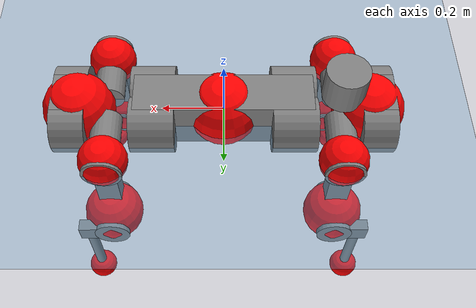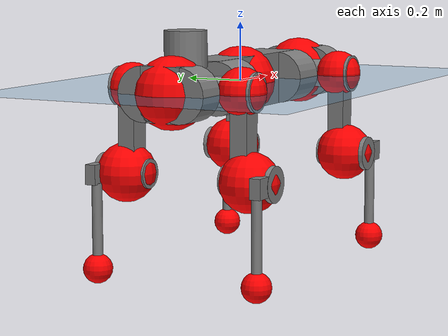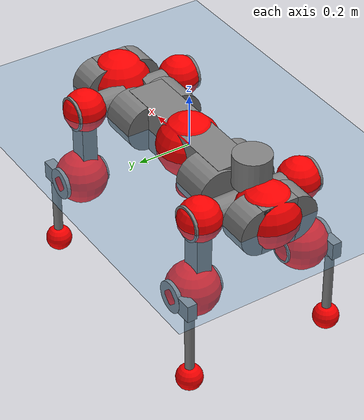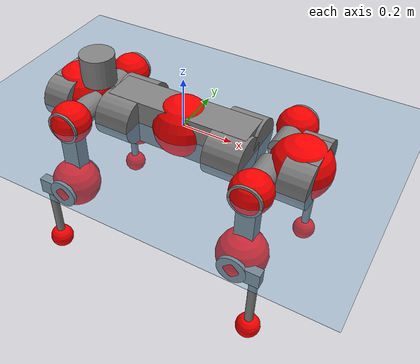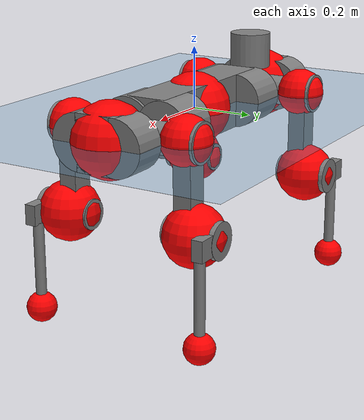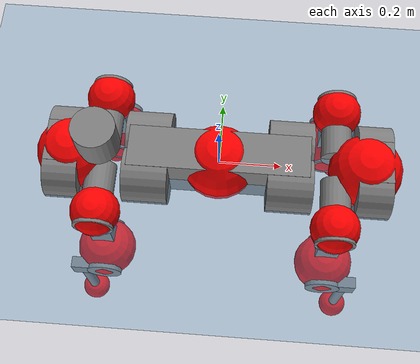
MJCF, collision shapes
<mujoco model="anymal_c">
  <compiler angle="radian" assetdir="assets" balanceinertia="true" inertiafromgeom="false"/>

  <option timestep="0.005" density="1.2" viscosity="2e-05"/>

  <size nkey="1"/>

  <visual>
    <quality shadowsize="8192"/>
    <map shadowclip="0.5"/>
  </visual>

  <default>
    <default class="/">
      <material specular="0" shininess="0.25"/>
      <geom contype="0" conaffinity="0" group="1" solref="-1000 -80"/>
      <site size="0.01 0.005 0.005" group="5"/>
      <general forcelimited="true" forcerange="-80 80" biastype="affine" gainprm="80" biasprm="0 -80 -2"/>
      <default class="anymal_c">
        <joint armature="0.01" damping="0.01" frictionloss="0.1"/>
        <default class="visual">
          <geom type="mesh" group="2"/>
          <default class="visual_zflip"/>
        </default>
        <default class="collision">
          <geom type="cylinder" group="3"/>
          <default class="foot">
            <geom size="0.03 0 0" type="sphere" condim="6" priority="1" friction="0.8 0.02 0.01" solimp="0.015 1 0.03"/>
          </default>
        </default>
      </default>
      <default class="reward_collision_sphere">
        <geom group="5" rgba="1 0 0 1"/>
      </default>
    </default>
  </default>

  <asset>
    <texture type="skybox" colorspace="auto" name="//unnamed_texture_0" builtin="gradient" rgb1="0.95 0.95 0.95" rgb2="0.95 0.95 0.95" width="100" height="600"/>
    <texture type="2d" colorspace="auto" name="texplane" builtin="checker" rgb1="0.345 0.575 0.748" rgb2="0.345 0.575 0.748" markrgb="1 1 1" width="512" height="512"/>
    <texture type="2d" colorspace="linear" name="base" file="base.png"/>
    <texture type="2d" colorspace="linear" name="top_shell" file="top_shell.png"/>
    <texture type="2d" colorspace="linear" name="bottom_shell" file="bottom_shell.png"/>
    <texture type="2d" colorspace="linear" name="remote" file="remote.png"/>
    <texture type="2d" colorspace="linear" name="hatch" file="hatch.png"/>
    <texture type="2d" colorspace="linear" name="handle" file="handle.png"/>
    <texture type="2d" colorspace="linear" name="face" file="face.png"/>
    <texture type="2d" colorspace="linear" name="battery" file="battery.png"/>
    <texture type="2d" colorspace="linear" name="lidar_cage" file="lidar_cage.png"/>
    <texture type="2d" colorspace="linear" name="depth_camera" file="depth_camera.png"/>
    <texture type="2d" colorspace="linear" name="wide_angle_camera" file="wide_angle_camera.png"/>
    <texture type="2d" colorspace="linear" name="lidar" file="lidar.png"/>
    <texture type="2d" colorspace="linear" name="drive" file="drive.png"/>
    <texture type="2d" colorspace="linear" name="hip_l" file="hip_l.png"/>
    <texture type="2d" colorspace="linear" name="shank_l" file="shank_l.png"/>
    <texture type="2d" colorspace="linear" name="foot" file="foot.png"/>
    <texture type="2d" colorspace="linear" name="thigh" file="thigh.png"/>
    <texture type="2d" colorspace="linear" name="shank_r" file="shank_r.png"/>
    <texture type="2d" colorspace="linear" name="hip_r" file="hip_r.png"/>
    <material name="MatPlane" class="/" texture="texplane" texuniform="true" texrepeat="2 2" specular="0.9" shininess="0.5"/>
    <material name="black_plastic" class="/" rgba="0.007 0.007 0.007 1"/>
    <material name="green" class="/" rgba="0.052 0.178 0.033 1"/>
    <material name="red" class="/" rgba="0.178 0.006 0.005 1"/>
    <material name="yellow" class="/" rgba="0.178 0.119 0.006 1"/>
    <material name="lwl" class="/" rgba="0.8 0.8 0.8 1"/>
    <material name="base" class="/" texture="base"/>
    <material name="top_shell" class="/" texture="top_shell"/>
    <material name="bottom_shell" class="/" texture="bottom_shell"/>
    <material name="hip_l" class="/" texture="hip_l"/>
    <material name="thigh" class="/" texture="thigh"/>
    <material name="shank_l" class="/" texture="shank_l"/>
    <material name="foot" class="/" texture="foot"/>
    <material name="hip_r" class="/" texture="hip_r"/>
    <material name="shank" class="/" texture="shank_r"/>
    <material name="hatch" class="/" texture="hatch"/>
    <material name="remote" class="/" texture="remote"/>
    <material name="handle" class="/" texture="handle"/>
    <material name="face" class="/" texture="face"/>
    <material name="depth_camera" class="/" texture="depth_camera"/>
    <material name="wide_angle_camera" class="/" texture="wide_angle_camera"/>
    <material name="battery" class="/" texture="battery"/>
    <material name="lidar_cage" class="/" texture="lidar_cage"/>
    <material name="lidar" class="/" texture="lidar"/>
    <material name="drive" class="/" texture="drive"/>
    <mesh name="base_0" class="/" file="base_0.obj"/>
    <mesh name="base_1" class="/" file="base_1.obj"/>
    <mesh name="base_2" class="/" file="base_2.obj"/>
    <mesh name="base_3" class="/" file="base_3.obj"/>
    <mesh name="base_4" class="/" file="base_4.obj"/>
    <mesh name="base_5" class="/" file="base_5.obj"/>
    <mesh name="top_shell" class="/" file="top_shell.obj"/>
    <mesh name="bottom_shell" class="/" file="bottom_shell.obj"/>
    <mesh name="remote" class="/" file="remote.obj"/>
    <mesh name="handle" class="/" file="handle.obj"/>
    <mesh name="face" class="/" file="face.obj"/>
    <mesh name="wide_angle_camera" class="/" file="wide_angle_camera.obj"/>
    <mesh name="depth_camera" class="/" file="depth_camera.obj"/>
    <mesh name="battery" class="/" file="battery.obj"/>
    <mesh name="lidar_cage" class="/" file="lidar_cage.obj"/>
    <mesh name="lidar" class="/" file="lidar.obj"/>
    <mesh name="drive" class="/" file="drive.obj"/>
    <mesh name="hip_l" class="/" file="hip_l.obj"/>
    <mesh name="thigh" class="/" file="thigh.obj"/>
    <mesh name="shank_l" class="/" file="shank_l.obj"/>
    <mesh name="foot" class="/" file="foot.obj"/>
    <mesh name="hip_r" class="/" file="hip_r.obj"/>
    <mesh name="hatch" class="/" file="hatch.obj"/>
    <mesh name="shank_r" class="/" file="shank_r.obj"/>
  </asset>

  <worldbody>
    <geom name="floor" class="/" size="100 100 0.125" type="plane" group="0" material="MatPlane"/>
    <light name="toplight_shadow" class="/" pos="0 0 5" dir="0.0990148 0.0990148 -0.990148" type="directional" ambient="0.04 0.04 0.04" diffuse="0.55 0.55 0.55" specular="0.12 0.12 0.12"/>
    <light name="toplight_fill" class="/" pos="0 0 5" dir="0.0990148 0.0990148 -0.990148" type="directional" castshadow="false" ambient="0.04 0.04 0.04" diffuse="0.3 0.3 0.3" specular="0.08 0.08 0.08"/>
    <body name="trunk" childclass="anymal_c" pos="0.000729882 0.000304797 0.000666907" quat="1 6.84145e-05 -3.95512e-05 -6.56127e-05">
      <inertial pos="0.00187839 -0.00039724 0.0485238" quat="0.501914 0.499761 0.499117 0.499203" mass="17.985" diaginertia="0.775745 0.402361 0.21052"/>
      <joint name="//unnamed_joint_0" type="free" armature="0" damping="0" frictionloss="0"/>
      <geom name="//unnamed_geom_1" class="visual" material="green" mesh="base_0"/>
      <geom name="//unnamed_geom_2" class="visual" material="yellow" mesh="base_1"/>
      <geom name="//unnamed_geom_3" class="visual" material="red" mesh="base_2"/>
      <geom name="//unnamed_geom_4" class="visual" material="black_plastic" mesh="base_3"/>
      <geom name="//unnamed_geom_5" class="visual" material="lwl" mesh="base_4"/>
      <geom name="//unnamed_geom_6" class="visual" material="base" mesh="base_5"/>
      <geom name="trunk_1" class="collision" size="0.284799 0.0687445 0.0883858" type="box"/>
      <geom name="trunk_2" class="collision" size="0.0883858 0.0711997" pos="0.225848 0.0640513 0" quat="0.707107 0 0.707107 0"/>
      <geom name="trunk_3" class="collision" size="0.0883858 0.0711997" pos="-0.225848 0.0640513 0" quat="0.707107 0 0.707107 0"/>
      <geom name="trunk_4" class="collision" size="0.0883858 0.0711997" pos="0.225848 -0.0640513 0" quat="0.707107 0 0.707107 0"/>
      <geom name="trunk_5" class="collision" size="0.0883858 0.0711997" pos="-0.225848 -0.0640513 0" quat="0.707107 0 0.707107 0"/>
      <geom name="//unnamed_geom_12" class="visual" material="top_shell" mesh="top_shell"/>
      <geom name="//unnamed_geom_13" class="visual" material="bottom_shell" mesh="bottom_shell"/>
      <geom name="//unnamed_geom_14" class="visual" material="remote" mesh="remote"/>
      <geom name="//unnamed_geom_15" class="visual" material="handle" mesh="handle"/>
      <geom name="//unnamed_geom_16" class="visual" pos="0.430409 0 0" quat="1 0 0 0" material="face" mesh="face"/>
      <geom name="trunk_6" class="collision" size="0.0540135 0.0687445 0.0883858" pos="0.487519 0 0" type="box"/>
      <geom name="//unnamed_geom_18" class="collision" size="0.0883858 0.0540135" pos="0.487519 0.0640513 0" quat="0.707107 0 0.707107 0"/>
      <geom name="//unnamed_geom_19" class="collision" size="0.0883858 0.0540135" pos="0.487519 -0.0640513 0" quat="0.707107 0 0.707107 0"/>
      <geom name="//unnamed_geom_20" class="visual" pos="0.479366 0 -0.0286431" quat="0.965926 0 0.258819 0" material="depth_camera" mesh="depth_camera"/>
      <geom name="//unnamed_geom_21" class="visual" pos="0.532689 0 0.0148621" material="wide_angle_camera" mesh="wide_angle_camera"/>
      <geom name="//unnamed_geom_22" class="visual_zflip" pos="-0.430409 0 0" quat="0 0 0 1" material="face" mesh="face"/>
      <geom name="trunk_7" class="collision" size="0.0540135 0.0687445 0.0883858" pos="-0.487519 0 0" quat="0 0 0 1" type="box"/>
      <geom name="//unnamed_geom_24" class="collision" size="0.0883858 0.0540135" pos="-0.487519 -0.0640513 0" quat="0 -0.707107 0 0.707107"/>
      <geom name="//unnamed_geom_25" class="collision" size="0.0883858 0.0540135" pos="-0.487519 0.0640513 0" quat="0 -0.707107 0 0.707107"/>
      <geom name="//unnamed_geom_26" class="visual" pos="-0.479366 0 -0.0286431" quat="0 -0.258819 0 0.965926" material="depth_camera" mesh="depth_camera"/>
      <geom name="//unnamed_geom_27" class="visual_zflip" pos="-0.532689 0 0.0148621" quat="0 0 0 1" material="wide_angle_camera" mesh="wide_angle_camera"/>
      <geom name="//unnamed_geom_28" class="visual" material="battery" mesh="battery"/>
      <geom name="//unnamed_geom_29" class="visual" pos="0 0.0683417 0.0291871" quat="0.683013 -0.183013 0.183013 0.683013" material="depth_camera" mesh="depth_camera"/>
      <geom name="//unnamed_geom_30" class="visual" pos="0 -0.0683417 0.0291871" quat="0.683013 0.183013 0.183013 -0.683013" material="depth_camera" mesh="depth_camera"/>
      <geom name="//unnamed_geom_31" class="visual" pos="-0.37797 0 0.0729704" quat="1 0 0 0" material="lidar_cage" mesh="lidar_cage"/>
      <geom name="trunk_8" class="collision" size="0.0687445 0.0589239" pos="-0.37797 0 0.132538"/>
      <geom name="//unnamed_geom_33" class="visual" pos="-0.37797 -4.84654e-05 0.141175" quat="0.707107 0 0 -0.707107" material="lidar" mesh="lidar"/>
      <geom name="//unnamed_geom_34" class="visual" pos="0.31141 0.0951896 -1.34164e-09" quat="0.258819 0.965926 0 0" material="drive" mesh="drive"/>
      <geom name="//unnamed_geom_35" class="visual" pos="0.31141 -0.0951896 1.34164e-09" quat="0.258819 -0.965926 0 0" material="drive" mesh="drive"/>
      <geom name="//unnamed_geom_36" class="visual" pos="-0.31141 0.0951896 1.34164e-09" quat="0 0 0.965926 -0.258819" material="drive" mesh="drive"/>
      <geom name="//unnamed_geom_37" class="visual" pos="-0.31141 -0.0951896 -1.34164e-09" quat="0 0 -0.965926 -0.258819" material="drive" mesh="drive"/>
      <geom name="//unnamed_geom_38" class="visual" pos="0.120452 0 0.072474" quat="1 0 0 0" material="hatch" mesh="hatch"/>
      <geom name="//unnamed_geom_39" class="reward_collision_sphere" size="0.117848"/>
      <geom name="//unnamed_geom_40" class="reward_collision_sphere" size="0.117848" pos="0.467271 0 0"/>
      <geom name="//unnamed_geom_41" class="reward_collision_sphere" size="0.117848" pos="-0.467271 0 0"/>
      <site name="imu" pos="0.259712 0.00343736 0.0461713" size="0.00982064"/>
      <camera name="track" pos="0 -1.83004 0" quat="0.707107 0.707107 0 0" mode="trackcom"/>
      <camera name="ego_camera" pos="0.467271 0 -0.0397118" quat="-0.5 -0.5 0.5 0.5"/>
      <body name="LF_HIP" pos="0.311763 0.0946573 0.000181669" quat="0.258889 0.965907 0.000215805 3.30161e-05">
        <inertial pos="0.059361 -0.0130011 -0.00831869" quat="-0.12869 0.709563 -0.135015 0.679507" mass="2.67184" diaginertia="0.00718151 0.00314257 0.00317389"/>
        <joint name="LF_HAA" pos="0 0 0" axis="0.999982 -0.00592943 -0.000881238" stiffness="4.34332e-06" range="-0.708081 0.488331" armature="0.00976564" damping="0.00636348" frictionloss="0.0982901"/>
        <geom name="//unnamed_geom_42" class="visual" pos="0 -7.89226e-05 1.2963e-05" quat="0.258819 -0.965926 0 0" material="hip_l" mesh="hip_l"/>
        <geom name="//unnamed_geom_43" class="visual" pos="0.062199 -0.0737707 -0.0431668" quat="0.183013 -0.683013 0.683013 0.183013" material="drive" mesh="drive"/>
        <geom name="//unnamed_geom_44" class="collision" size="0.0491032 0.0687445" pos="0.062199 -0.0109434 -0.00685524" quat="-0.353553 -0.612372 0.612372 -0.353553"/>
        <body name="LF_THIGH" pos="0.0616809 -0.0669097 -0.0429109" quat="0.182967 -0.683016 0.682991 0.183125">
          <inertial pos="0.0314444 0.000978616 -0.244015" quat="0.993176 -0.00521928 -0.0806369 0.0840952" mass="2.94496" diaginertia="0.0365027 0.0192703 0.00411596"/>
          <joint name="LF_HFE" pos="0 0 0" axis="1 -8.62112e-06 0.000815571" range="-3.15116 3.13721" armature="0.00989369" damping="0.0101175" frictionloss="0.0985463"/>
          <geom name="//unnamed_geom_45" class="visual" pos="0.00245441 3.86757e-06 0" quat="0.707107 0 0 -0.707107" material="thigh" mesh="thigh"/>
          <geom name="//unnamed_geom_46" class="collision" size="0.0638342 0.0392826" pos="0.0415352 0 0" quat="0.5 0.5 -0.5 -0.5"/>
          <geom name="//unnamed_geom_47" class="collision" size="0.0368274 0.0294619 0.138779" pos="0.0311514 0 -0.140296" quat="0.707107 0 0 -0.707107" type="box"/>
          <geom name="//unnamed_geom_48" class="visual" pos="0.10415 0 -0.282946" quat="1 0 0 0" material="drive" mesh="drive"/>
          <geom name="//unnamed_geom_49" class="collision" size="0.0491032 0.0687445" pos="0.0314629 0 -0.282946" quat="0.707107 0 0.707107 0"/>
          <geom name="//unnamed_geom_50" class="reward_collision_sphere" size="0.0785651" pos="0.0259595 0 0"/>
          <body name="LF_SHANK" pos="0.104235 -0.00043197 -0.283311" quat="1 -0.000171732 0.000367773 7.6737e-05">
            <inertial pos="0.00607223 -0.0559666 -0.0809519" quat="0.993083 -0.114523 -0.00152616 -0.0258463" mass="0.557783" diaginertia="0.0125367 0.00592369 0.00109378"/>
            <joint name="LF_KFE" pos="0 0 0" axis="0.999995 -0.00285527 0.00147496" range="-3.14299 3.13414" armature="0.00948136" damping="0.00878307" frictionloss="0.0942453"/>
            <geom name="//unnamed_geom_51" class="visual" pos="0.000800328 0.00426739 0" quat="0.707107 0 0 -0.707107" material="shank_l" mesh="shank_l"/>
            <geom name="LF_kfe_act" class="collision" size="0.0589239 0.0196413" pos="0.0207676 0 0" quat="0.5 0.5 -0.5 -0.5"/>
            <geom name="//unnamed_geom_53" class="collision" size="0.0564677 0.0331447 0.0186592" pos="0.0207676 -0.0526127 0" quat="0.5 0.5 -0.5 -0.5" type="box"/>
            <geom name="//unnamed_geom_54" class="visual" pos="0.0135507 -0.0791007 -0.335535" quat="0.382683 0 0 -0.92388" material="foot" mesh="foot"/>
            <geom name="LF_calf" class="collision" size="0.0171861 0.138719" pos="0.0135509 -0.0804759 -0.167767" quat="0.707107 0 0 -0.707107"/>
            <geom name="LF_foot" class="foot" size="0.0306146" pos="0.0135509 -0.0804759 -0.313197" quat="0.707107 0 0 -0.707107"/>
            <geom name="//unnamed_geom_57" class="reward_collision_sphere" size="0.0982064" pos="-0.051919 0 0"/>
            <geom name="//unnamed_geom_58" class="reward_collision_sphere" size="0.0491032" pos="0.0135509 -0.0804759 -0.313197"/>
            <site name="LF_foot" class="foot" pos="0.0135509 -0.0804759 -0.313197" quat="0.707107 0 0 -0.707107" size="0.00982064"/>
          </body>
        </body>
      </body>
      <body name="RF_HIP" pos="0.312228 -0.0957955 0.000165583" quat="0.258745 -0.965946 -8.5961e-05 -0.00025724">
        <inertial pos="0.0581454 0.014547 -0.0082583" quat="0.136263 0.679982 0.127701 0.709049" mass="2.64323" diaginertia="0.00720817 0.00319109 0.00324245"/>
        <joint name="RF_HAA" pos="0 0 0" axis="0.999985 -0.00547673 0.000397334" range="-0.492606 0.720764" armature="0.00993496" damping="0.00783938" frictionloss="0.0995747"/>
        <geom name="//unnamed_geom_59" class="visual" pos="0 7.89219e-05 1.29629e-05" quat="0.258819 0.965926 0 0" material="hip_r" mesh="hip_r"/>
        <geom name="//unnamed_geom_60" class="visual" pos="0.062199 0.0737707 -0.0431668" quat="0.183013 0.683013 0.683013 -0.183013" material="drive" mesh="drive"/>
        <geom name="//unnamed_geom_61" class="collision" size="0.0491032 0.0687445" pos="0.062199 0.0109434 -0.00685524" quat="-0.353553 0.612372 0.612372 0.353553"/>
        <body name="RF_THIGH" pos="0.0623856 0.0657785 -0.0420025" quat="0.182949 0.68292 0.683153 -0.182898">
          <inertial pos="0.0311929 0.000543741 -0.243469" quat="0.992834 -0.00531163 -0.083435 0.0853888" mass="2.90193" diaginertia="0.0369486 0.0193297 0.0040536"/>
          <joint name="RF_HFE" pos="0 0 0" axis="1 -0.000356903 0.000638769" stiffness="0.000270679" range="-3.14607 3.13012" armature="0.00985363" damping="0.00758992" frictionloss="0.0955101"/>
          <geom name="//unnamed_geom_62" class="visual" pos="0.00245441 3.86757e-06 0" quat="0.707107 0 0 -0.707107" material="thigh" mesh="thigh"/>
          <geom name="//unnamed_geom_63" class="collision" size="0.0638342 0.0392826" pos="0.0415352 0 0" quat="0.5 0.5 0.5 0.5"/>
          <geom name="//unnamed_geom_64" class="collision" size="0.0368274 0.0294619 0.138779" pos="0.0311514 0 -0.140296" quat="0.707107 0 0 0.707107" type="box"/>
          <geom name="//unnamed_geom_65" class="visual" pos="0.10415 0 -0.282946" quat="1 0 0 0" material="drive" mesh="drive"/>
          <geom name="//unnamed_geom_66" class="collision" size="0.0491032 0.0687445" pos="0.0314629 0 -0.282946" quat="0.707107 0 0.707107 0"/>
          <geom name="//unnamed_geom_67" class="reward_collision_sphere" size="0.0785651" pos="0.0259595 0 0"/>
          <body name="RF_SHANK" pos="0.104046 0.000637425 -0.282491" quat="1 -4.52426e-05 1.33613e-05 1.93869e-05">
            <inertial pos="0.00596998 0.0557819 -0.0796929" quat="0.992933 0.115926 -0.00114545 0.0253881" mass="0.558385" diaginertia="0.0122649 0.00592713 0.00108916"/>
            <joint name="RF_KFE" pos="0 0 0" axis="1 -0.000299702 -0.000130602" range="-3.13842 3.12111" armature="0.00985388" damping="0.0050424" frictionloss="0.0999843"/>
            <geom name="//unnamed_geom_68" class="visual" pos="0.000800324 -0.00426738 0" quat="0.707107 0 0 0.707107" material="shank" mesh="shank_r"/>
            <geom name="RF_kfe_act" class="collision" size="0.0589239 0.0196413" pos="0.0207676 0 0" quat="0.5 0.5 0.5 0.5"/>
            <geom name="//unnamed_geom_70" class="collision" size="0.0564677 0.0331447 0.0186592" pos="0.0207676 0.0526127 0" quat="0.5 0.5 0.5 0.5" type="box"/>
            <geom name="//unnamed_geom_71" class="visual" pos="0.0135511 0.0791007 -0.335535" quat="0.382683 0 0 0.92388" material="foot" mesh="foot"/>
            <geom name="RF_calf" class="collision" size="0.0171861 0.138719" pos="0.0135509 0.0804759 -0.167767" quat="0.707107 0 0 0.707107"/>
            <geom name="RF_foot" class="foot" size="0.0297206" pos="0.0135509 0.0804759 -0.313197" quat="0.707107 0 0 0.707107"/>
            <geom name="//unnamed_geom_74" class="reward_collision_sphere" size="0.0982064" pos="-0.051919 0 0"/>
            <geom name="//unnamed_geom_75" class="reward_collision_sphere" size="0.0491032" pos="0.0135509 0.0804759 -0.313197"/>
            <site name="RF_foot" class="foot" pos="0.0135509 0.0804759 -0.313197" quat="0.707107 0 0 0.707107" size="0.00982064"/>
          </body>
        </body>
      </body>
      <body name="LH_HIP" pos="-0.310953 0.0954837 0.00103163" quat="2.82989e-05 -1.23854e-05 0.965923 -0.258831">
        <inertial pos="0.0587148 0.0141333 -0.00759349" quat="0.136926 0.681156 0.125197 0.70824" mass="2.65934" diaginertia="0.00709448 0.00317076 0.00319605"/>
        <joint name="LH_HAA" pos="0 0 0" axis="1 0.000299555 0.000207095" range="-0.498578 0.739268" armature="0.0100133" damping="0.00820799" frictionloss="0.0980935"/>
        <geom name="//unnamed_geom_76" class="visual" pos="0 7.89219e-05 1.29629e-05" quat="-0.258819 -0.965926 0 0" material="hip_r" mesh="hip_r"/>
        <geom name="//unnamed_geom_77" class="visual" pos="0.062199 0.0737707 -0.0431668" quat="0.183013 0.683013 0.683013 -0.183013" material="drive" mesh="drive"/>
        <geom name="//unnamed_geom_78" class="collision" size="0.0491032 0.0687445" pos="0.062199 0.0109434 -0.00685524" quat="-0.353553 0.612372 0.612372 0.353553"/>
        <body name="LH_THIGH" pos="0.0618093 0.0667721 -0.0421592" quat="0.182862 0.68294 0.683175 -0.182829">
          <inertial pos="0.0319866 -0.000201619 -0.243382" quat="0.99283 -0.0053999 -0.0803689 0.0883245" mass="2.93557" diaginertia="0.0365968 0.0193442 0.00400945"/>
          <joint name="LH_HFE" pos="0 0 0" axis="0.999987 0.0026206 -0.0042691" range="-3.14721 3.13372" armature="0.00947444" damping="0.0132796" frictionloss="0.0985405"/>
          <geom name="//unnamed_geom_79" class="visual" pos="0.00245441 3.86757e-06 0" quat="0.707107 0 0 -0.707107" material="thigh" mesh="thigh"/>
          <geom name="//unnamed_geom_80" class="collision" size="0.0638342 0.0392826" pos="0.0415352 0 0" quat="0.5 0.5 -0.5 -0.5"/>
          <geom name="//unnamed_geom_81" class="collision" size="0.0368274 0.0294619 0.138779" pos="0.0311514 0 -0.140296" quat="0.707107 0 0 -0.707107" type="box"/>
          <geom name="//unnamed_geom_82" class="visual" pos="0.10415 0 -0.282946" quat="1 0 0 0" material="drive" mesh="drive"/>
          <geom name="//unnamed_geom_83" class="collision" size="0.0491032 0.0687445" pos="0.0314629 0 -0.282946" quat="0.707107 0 0.707107 0"/>
          <geom name="//unnamed_geom_84" class="reward_collision_sphere" size="0.0785651" pos="0.0259595 0 0"/>
          <body name="LH_SHANK" pos="0.104282 -0.000555013 -0.283353" quat="1 -7.4695e-05 -4.92251e-06 3.30568e-05">
            <inertial pos="0.00575285 0.056532 -0.0803564" quat="0.992447 0.119878 -0.000769577 0.0260282" mass="0.557508" diaginertia="0.0124009 0.00590659 0.0010712"/>
            <joint name="LH_KFE" pos="0 0 0" axis="0.999999 -8.89654e-05 -0.00115853" range="-3.14612 3.12975" armature="0.00942087" damping="0.0130822" frictionloss="0.100524"/>
            <geom name="//unnamed_geom_85" class="visual" pos="0.000800324 -0.00426738 0" quat="-0.707107 0 0 -0.707107" material="shank" mesh="shank_r"/>
            <geom name="LH_kfe_act" class="collision" size="0.0589239 0.0196413" pos="0.0207676 0 0" quat="0.5 0.5 -0.5 -0.5"/>
            <geom name="//unnamed_geom_87" class="collision" size="0.0564677 0.0331447 0.0186592" pos="0.0207676 0.0526127 0" quat="0.5 0.5 -0.5 -0.5" type="box"/>
            <geom name="//unnamed_geom_88" class="visual" pos="0.0135511 0.0791007 -0.335535" quat="-0.382683 0 0 -0.92388" material="foot" mesh="foot"/>
            <geom name="LH_calf" class="collision" size="0.0171861 0.138719" pos="0.0135509 0.0804759 -0.167767" quat="0.707107 0 0 -0.707107"/>
            <geom name="LH_foot" class="foot" size="0.030482" pos="0.0135509 0.0804759 -0.313197" quat="0.707107 0 0 -0.707107"/>
            <geom name="//unnamed_geom_91" class="reward_collision_sphere" size="0.0982064" pos="-0.051919 0 0"/>
            <geom name="//unnamed_geom_92" class="reward_collision_sphere" size="0.0491032" pos="0.0135509 0.0804759 -0.313197"/>
            <site name="LH_foot" class="foot" pos="0.0135509 0.0804759 -0.313197" quat="0.707107 0 0 -0.707107" size="0.00982064"/>
          </body>
        </body>
      </body>
      <body name="RH_HIP" pos="-0.311205 -0.094458 0.000631364" quat="-3.08991e-05 -0.000264495 -0.965981 -0.258614">
        <inertial pos="0.0593449 -0.0147874 -0.00893607" quat="-0.126181 0.709575 -0.131961 0.680564" mass="2.63265" diaginertia="0.00705305 0.00315603 0.00318371"/>
        <joint name="RH_HAA" pos="0 0 0" axis="0.999989 -8.75164e-05 0.00459684" range="-0.723937 0.498807" armature="0.0101594" damping="0.0098134" frictionloss="0.10044"/>
        <geom name="//unnamed_geom_93" class="visual" pos="0 -7.89226e-05 1.2963e-05" quat="-0.258819 0.965926 0 0" material="hip_l" mesh="hip_l"/>
        <geom name="//unnamed_geom_94" class="visual" pos="0.062199 -0.0737707 -0.0431668" quat="-0.183013 0.683013 -0.683013 -0.183013" material="drive" mesh="drive"/>
        <geom name="//unnamed_geom_95" class="collision" size="0.0491032 0.0687445" pos="0.062199 -0.0109434 -0.00685524" quat="0.353553 0.612372 -0.612372 0.353553"/>
        <body name="RH_THIGH" pos="0.0615998 -0.0655955 -0.042246" quat="-0.183011 0.683004 -0.683025 -0.182999">
          <inertial pos="0.0322307 -0.000174576 -0.24378" quat="0.993133 -0.00578178 -0.0810507 0.0841729" mass="2.91577" diaginertia="0.036339 0.0189608 0.0040281"/>
          <joint name="RH_HFE" pos="0 0 0" axis="1 7.30312e-05 -2.73021e-05" range="-3.14185 3.14033" armature="0.00989297" damping="0.00899395" frictionloss="0.100495"/>
          <geom name="//unnamed_geom_96" class="visual" pos="0.00245441 3.86757e-06 0" quat="0.707107 0 0 -0.707107" material="thigh" mesh="thigh"/>
          <geom name="//unnamed_geom_97" class="collision" size="0.0638342 0.0392826" pos="0.0415352 0 0" quat="0.5 0.5 0.5 0.5"/>
          <geom name="//unnamed_geom_98" class="collision" size="0.0368274 0.0294619 0.138779" pos="0.0311514 0 -0.140296" quat="0.707107 0 0 0.707107" type="box"/>
          <geom name="//unnamed_geom_99" class="visual" pos="0.10415 0 -0.282946" quat="1 0 0 0" material="drive" mesh="drive"/>
          <geom name="//unnamed_geom_100" class="collision" size="0.0491032 0.0687445" pos="0.0314629 0 -0.282946" quat="0.707107 0 0.707107 0"/>
          <geom name="//unnamed_geom_101" class="reward_collision_sphere" size="0.0785651" pos="0.0259595 0 0"/>
          <body name="RH_SHANK" pos="0.103483 7.33779e-05 -0.284394" quat="1 -1.23585e-05 -1.11838e-05 8.37091e-05">
            <inertial pos="0.00647396 -0.0557607 -0.0802116" quat="0.99281 -0.117221 -0.00466567 -0.0237991" mass="0.559339" diaginertia="0.0122324 0.00593346 0.00107371"/>
            <joint name="RH_KFE" pos="0 0 0" axis="0.999985 0.00517387 -0.00181446" range="-3.13674 3.13355" armature="0.00963842" damping="0.00789764" frictionloss="0.0964495"/>
            <geom name="//unnamed_geom_102" class="visual" pos="0.000800328 0.00426739 0" quat="0.707107 0 0 -0.707107" material="shank_l" mesh="shank_l"/>
            <geom name="RH_kfe_act" class="collision" size="0.0589239 0.0196413" pos="0.0207676 0 0" quat="0.5 0.5 0.5 0.5"/>
            <geom name="//unnamed_geom_104" class="collision" size="0.0564677 0.0331447 0.0186592" pos="0.0207676 -0.0526127 0" quat="0.5 0.5 0.5 0.5" type="box"/>
            <geom name="//unnamed_geom_105" class="visual" pos="0.0135507 -0.0791007 -0.335535" quat="0.382683 0 0 -0.92388" material="foot" mesh="foot"/>
            <geom name="RH_calf" class="collision" size="0.0171861 0.138719" pos="0.0135509 -0.0804759 -0.167767" quat="0.707107 0 0 0.707107"/>
            <geom name="RH_foot" class="foot" size="0.0272058" pos="0.0135509 -0.0804759 -0.313197" quat="0.707107 0 0 0.707107"/>
            <geom name="//unnamed_geom_108" class="reward_collision_sphere" size="0.0982064" pos="-0.051919 0 0"/>
            <geom name="//unnamed_geom_109" class="reward_collision_sphere" size="0.0491032" pos="0.0135509 -0.0804759 -0.313197"/>
            <site name="RH_foot" class="foot" pos="0.0135509 -0.0804759 -0.313197" quat="0.707107 0 0 0.707107" size="0.00982064"/>
          </body>
        </body>
      </body>
    </body>
  </worldbody>

  <contact>
    <pair class="/" geom1="floor" geom2="LF_foot" name="//unnamed_contact_0"/>
    <pair class="/" geom1="floor" geom2="RF_foot" name="//unnamed_contact_1"/>
    <pair class="/" geom1="floor" geom2="LH_foot" name="//unnamed_contact_2"/>
    <pair class="/" geom1="floor" geom2="RH_foot" name="//unnamed_contact_3"/>
  </contact>

  <actuator>
    <general name="LF_HAA" class="/" joint="LF_HAA" forcerange="-79.0626 79.0626" gainprm="78.9214" biasprm="0 -78.9214 -1.89319"/>
    <general name="LF_HFE" class="/" joint="LF_HFE" forcerange="-81.065 81.065" gainprm="78.9214" biasprm="0 -78.9214 -1.89319"/>
    <general name="LF_KFE" class="/" joint="LF_KFE" forcerange="-79.4653 79.4653" gainprm="78.9214" biasprm="0 -78.9214 -1.89319"/>
    <general name="RF_HAA" class="/" joint="RF_HAA" forcerange="-78.7239 78.7239" gainprm="78.9214" biasprm="0 -78.9214 -1.89319"/>
    <general name="RF_HFE" class="/" joint="RF_HFE" forcerange="-76.9512 76.9512" gainprm="78.9214" biasprm="0 -78.9214 -1.89319"/>
    <general name="RF_KFE" class="/" joint="RF_KFE" forcerange="-78.9851 78.9851" gainprm="78.9214" biasprm="0 -78.9214 -1.89319"/>
    <general name="LH_HAA" class="/" joint="LH_HAA" forcerange="-80.5646 80.5646" gainprm="78.9214" biasprm="0 -78.9214 -1.89319"/>
    <general name="LH_HFE" class="/" joint="LH_HFE" forcerange="-80.6654 80.6654" gainprm="78.9214" biasprm="0 -78.9214 -1.89319"/>
    <general name="LH_KFE" class="/" joint="LH_KFE" forcerange="-78.9214 78.9214" gainprm="78.9214" biasprm="0 -78.9214 -1.89319"/>
    <general name="RH_HAA" class="/" joint="RH_HAA" forcerange="-81.3936 81.3936" gainprm="78.9214" biasprm="0 -78.9214 -1.89319"/>
    <general name="RH_HFE" class="/" joint="RH_HFE" forcerange="-79.8258 79.8258" gainprm="78.9214" biasprm="0 -78.9214 -1.89319"/>
    <general name="RH_KFE" class="/" joint="RH_KFE" forcerange="-79.2105 79.2105" gainprm="78.9214" biasprm="0 -78.9214 -1.89319"/>
  </actuator>

  <sensor>
    <gyro site="imu" name="imu_angular_velocity"/>
    <velocimeter site="imu" name="imu_linear_velocity"/>
    <framelinvel objtype="site" objname="LF_foot" name="LF_foot_global_linear_velocity"/>
    <framelinvel objtype="site" objname="RF_foot" name="RF_foot_global_linear_velocity"/>
    <framelinvel objtype="site" objname="LH_foot" name="LH_foot_global_linear_velocity"/>
    <framelinvel objtype="site" objname="RH_foot" name="RH_foot_global_linear_velocity"/>
  </sensor>

  <keyframe>
    <key name="home" qpos="0 0 0.55 1 0 0 0 0 0.4 -0.8 0 -0.4 0.8 0 -0.4 0.8 0 0.4 -0.8"/>
  </keyframe>
</mujoco>
